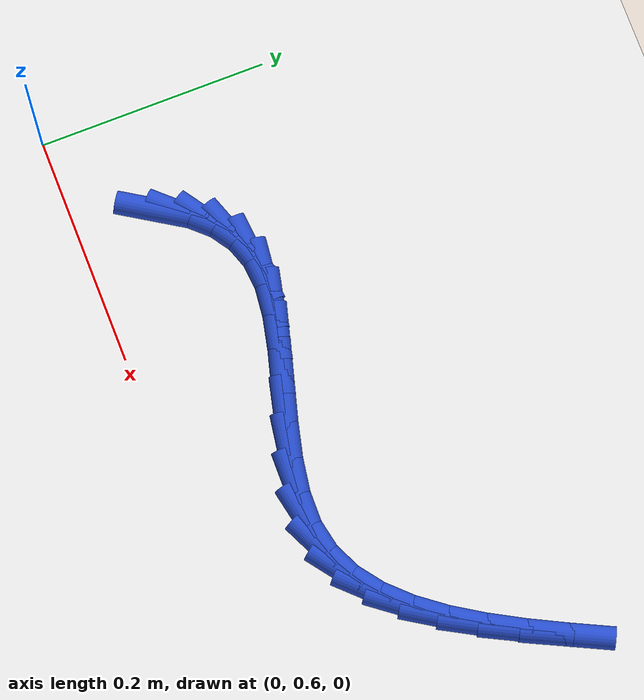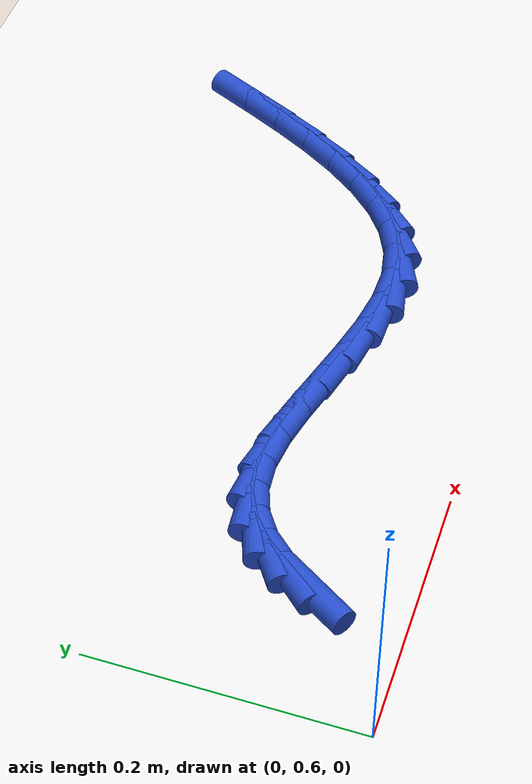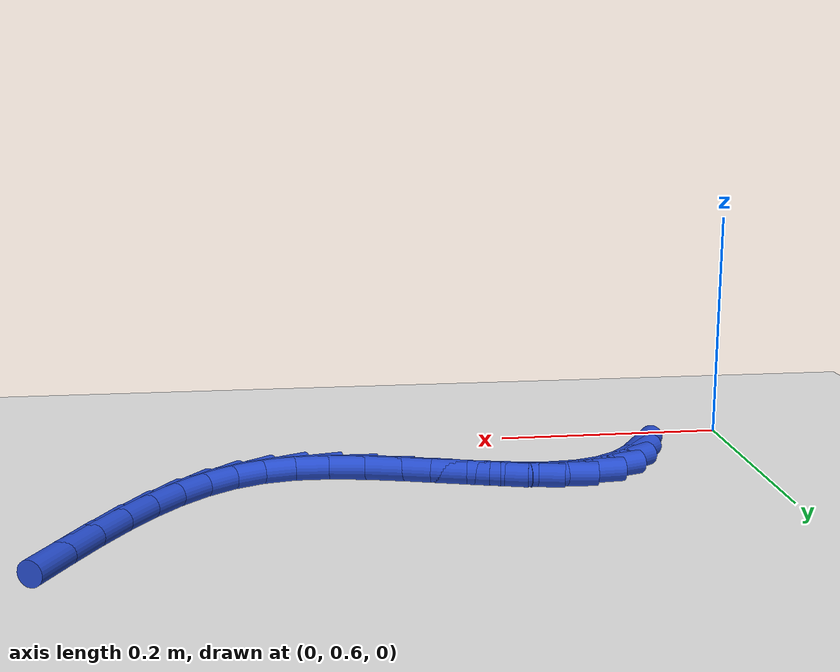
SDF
<sdf version="1.6">
 <world name="default">
  <model name="ground_plane">
   <static>1</static>
   <link name="link">
    <collision name="collision">
     <geometry><plane><normal>0 0 1</normal><size>100 100</size></plane></geometry>
     <surface><friction><ode><mu>100</mu><mu2>50</mu2></ode></friction></surface>
    </collision>
    <visual name="visual">
     <cast_shadows>0</cast_shadows>
     <geometry><plane><normal>0 0 1</normal><size>100 100</size></plane></geometry>
     <material>
      <script><uri>file://media/materials/scripts/gazebo.material</uri><name>Gazebo/WhiteGlow</name></script>
     </material>
    </visual>
   </link>
  </model>
  <model name="line">
   <link name="link_21">
    <pose>0.09260509833753626 0.6738903278546018 0.01 0 1.57 1.0072835828882964</pose>
    <collision name="collision">
     <geometry><cylinder><radius>0.01</radius><length>0.08</length></cylinder></geometry>
    </collision>
    <visual name="visual">
     <material>
      <script><name>Gazebo/Blue</name><uri>file://media/materials/scripts/gazebo.material</uri></script>
     </material>
     <geometry><cylinder><radius>0.01</radius><length>0.08</length></cylinder></geometry>
    </visual>
   </link>
   <link name="link_22">
    <pose>0.10579840660856102 0.6947706445567218 0.01 0 1.57 0.8257167259240422</pose>
    <collision name="collision">
     <geometry><cylinder><radius>0.01</radius><length>0.08</length></cylinder></geometry>
    </collision>
    <visual name="visual">
     <material>
      <script><name>Gazebo/Blue</name><uri>file://media/materials/scripts/gazebo.material</uri></script>
     </material>
     <geometry><cylinder><radius>0.01</radius><length>0.08</length></cylinder></geometry>
    </visual>
   </link>
   <link name="link_23">
    <pose>0.12131634025160658 0.7115932075410786 0.01 0 1.57 0.5987059527208497</pose>
    <collision name="collision">
     <geometry><cylinder><radius>0.01</radius><length>0.08</length></cylinder></geometry>
    </collision>
    <visual name="visual">
     <material>
      <script><name>Gazebo/Blue</name><uri>file://media/materials/scripts/gazebo.material</uri></script>
     </material>
     <geometry><cylinder><radius>0.01</radius><length>0.08</length></cylinder></geometry>
    </visual>
   </link>
   <link name="link_24">
    <pose>0.13938545619869164 0.7239206589861725 0.01 0 1.57 0.34088142372437685</pose>
    <collision name="collision">
     <geometry><cylinder><radius>0.01</radius><length>0.08</length></cylinder></geometry>
    </collision>
    <visual name="visual">
     <material>
      <script><name>Gazebo/Blue</name><uri>file://media/materials/scripts/gazebo.material</uri></script>
     </material>
     <geometry><cylinder><radius>0.01</radius><length>0.08</length></cylinder></geometry>
    </visual>
   </link>
   <link name="link_25">
    <pose>0.1602323113818349 0.7313156410705037 0.01 0 1.57 0.08552155814563012</pose>
    <collision name="collision">
     <geometry><cylinder><radius>0.01</radius><length>0.08</length></cylinder></geometry>
    </collision>
    <visual name="visual">
     <material>
      <script><name>Gazebo/Blue</name><uri>file://media/materials/scripts/gazebo.material</uri></script>
     </material>
     <geometry><cylinder><radius>0.01</radius><length>0.08</length></cylinder></geometry>
    </visual>
   </link>
   <link name="link_26">
    <pose>0.1840744512960569 0.7333596436923977 0.01 0 1.57 -0.10899472382913782</pose>
    <collision name="collision">
     <geometry><cylinder><radius>0.01</radius><length>0.08</length></cylinder></geometry>
    </collision>
    <visual name="visual">
     <material>
      <script><name>Gazebo/Blue</name><uri>file://media/materials/scripts/gazebo.material</uri></script>
     </material>
     <geometry><cylinder><radius>0.01</radius><length>0.08</length></cylinder></geometry>
    </visual>
   </link>
   <link name="link_27">
    <pose>0.21074351606767266 0.7304412906478425 0.01 0 1.57 -0.21858061651169342</pose>
    <collision name="collision">
     <geometry><cylinder><radius>0.01</radius><length>0.08</length></cylinder></geometry>
    </collision>
    <visual name="visual">
     <material>
      <script><name>Gazebo/Blue</name><uri>file://media/materials/scripts/gazebo.material</uri></script>
     </material>
     <geometry><cylinder><radius>0.01</radius><length>0.08</length></cylinder></geometry>
    </visual>
   </link>
   <link name="link_28">
    <pose>0.23954822387258012 0.7240429143625616 0.01 0 1.57 -0.2686732767853013</pose>
    <collision name="collision">
     <geometry><cylinder><radius>0.01</radius><length>0.08</length></cylinder></geometry>
    </collision>
    <visual name="visual">
     <material>
      <script><name>Gazebo/Blue</name><uri>file://media/materials/scripts/gazebo.material</uri></script>
     </material>
     <geometry><cylinder><radius>0.01</radius><length>0.08</length></cylinder></geometry>
    </visual>
   </link>
   <link name="link_29">
    <pose>0.26976008262744194 0.7157246737555208 0.01 0 1.57 -0.2738670696774084</pose>
    <collision name="collision">
     <geometry><cylinder><radius>0.01</radius><length>0.08</length></cylinder></geometry>
    </collision>
    <visual name="visual">
     <material>
      <script><name>Gazebo/Blue</name><uri>file://media/materials/scripts/gazebo.material</uri></script>
     </material>
     <geometry><cylinder><radius>0.01</radius><length>0.08</length></cylinder></geometry>
    </visual>
   </link>
   <link name="link_30">
    <pose>0.3006506002489206 0.7070467277456862 0.01 0 1.57 -0.23786541721052984</pose>
    <collision name="collision">
     <geometry><cylinder><radius>0.01</radius><length>0.08</length></cylinder></geometry>
    </collision>
    <visual name="visual">
     <material>
      <script><name>Gazebo/Blue</name><uri>file://media/materials/scripts/gazebo.material</uri></script>
     </material>
     <geometry><cylinder><radius>0.01</radius><length>0.08</length></cylinder></geometry>
    </visual>
   </link>
   <link name="link_31">
    <pose>0.33149128465367916 0.6995692352520233 0.01 0 1.57 -0.15563430187163324</pose>
    <collision name="collision">
     <geometry><cylinder><radius>0.01</radius><length>0.08</length></cylinder></geometry>
    </collision>
    <visual name="visual">
     <material>
      <script><name>Gazebo/Blue</name><uri>file://media/materials/scripts/gazebo.material</uri></script>
     </material>
     <geometry><cylinder><radius>0.01</radius><length>0.08</length></cylinder></geometry>
    </visual>
   </link>
   <link name="link_32">
    <pose>0.36155364375838006 0.6948523551934981 0.01 0 1.57 -0.013870628158267779</pose>
    <collision name="collision">
     <geometry><cylinder><radius>0.01</radius><length>0.08</length></cylinder></geometry>
    </collision>
    <visual name="visual">
     <material>
      <script><name>Gazebo/Blue</name><uri>file://media/materials/scripts/gazebo.material</uri></script>
     </material>
     <geometry><cylinder><radius>0.01</radius><length>0.08</length></cylinder></geometry>
    </visual>
   </link>
   <link name="link_33">
    <pose>0.3901091854796858 0.6944562464890758 0.01 0 1.57 0.20102334938266286</pose>
    <collision name="collision">
     <geometry><cylinder><radius>0.01</radius><length>0.08</length></cylinder></geometry>
    </collision>
    <visual name="visual">
     <material>
      <script><name>Gazebo/Blue</name><uri>file://media/materials/scripts/gazebo.material</uri></script>
     </material>
     <geometry><cylinder><radius>0.01</radius><length>0.08</length></cylinder></geometry>
    </visual>
   </link>
   <link name="link_34">
    <pose>0.41647738447328136 0.6998294435664786 0.01 0 1.57 0.4379355023624844</pose>
    <collision name="collision">
     <geometry><cylinder><radius>0.01</radius><length>0.08</length></cylinder></geometry>
    </collision>
    <visual name="visual">
     <material>
      <script><name>Gazebo/Blue</name><uri>file://media/materials/scripts/gazebo.material</uri></script>
     </material>
     <geometry><cylinder><radius>0.01</radius><length>0.08</length></cylinder></geometry>
    </visual>
   </link>
   <link name="link_35">
    <pose>0.4405453479932527 0.7110995301008451 0.01 0 1.57 0.6409313779787396</pose>
    <collision name="collision">
     <geometry><cylinder><radius>0.01</radius><length>0.08</length></cylinder></geometry>
    </collision>
    <visual name="visual">
     <material>
      <script><name>Gazebo/Blue</name><uri>file://media/materials/scripts/gazebo.material</uri></script>
     </material>
     <geometry><cylinder><radius>0.01</radius><length>0.08</length></cylinder></geometry>
    </visual>
   </link>
   <link name="link_36">
    <pose>0.4625712122363233 0.7275306598614439 0.01 0 1.57 0.7998318997861417</pose>
    <collision name="collision">
     <geometry><cylinder><radius>0.01</radius><length>0.08</length></cylinder></geometry>
    </collision>
    <visual name="visual">
     <material>
      <script><name>Gazebo/Blue</name><uri>file://media/materials/scripts/gazebo.material</uri></script>
     </material>
     <geometry><cylinder><radius>0.01</radius><length>0.08</length></cylinder></geometry>
    </visual>
   </link>
   <link name="link_37">
    <pose>0.4828195171551275 0.7483720842912598 0.01 0 1.57 0.9179690309820943</pose>
    <collision name="collision">
     <geometry><cylinder><radius>0.01</radius><length>0.08</length></cylinder></geometry>
    </collision>
    <visual name="visual">
     <material>
      <script><name>Gazebo/Blue</name><uri>file://media/materials/scripts/gazebo.material</uri></script>
     </material>
     <geometry><cylinder><radius>0.01</radius><length>0.08</length></cylinder></geometry>
    </visual>
   </link>
   <link name="link_38">
    <pose>0.5015548027023005 0.772873054833278 0.01 0 1.57 1.0029194961640735</pose>
    <collision name="collision">
     <geometry><cylinder><radius>0.01</radius><length>0.08</length></cylinder></geometry>
    </collision>
    <visual name="visual">
     <material>
      <script><name>Gazebo/Blue</name><uri>file://media/materials/scripts/gazebo.material</uri></script>
     </material>
     <geometry><cylinder><radius>0.01</radius><length>0.08</length></cylinder></geometry>
    </visual>
   </link>
   <link name="link_39">
    <pose>0.5190416088304769 0.8002828229304835 0.01 0 1.57 1.061728043392184</pose>
    <collision name="collision">
     <geometry><cylinder><radius>0.01</radius><length>0.08</length></cylinder></geometry>
    </collision>
    <visual name="visual">
     <material>
      <script><name>Gazebo/Blue</name><uri>file://media/materials/scripts/gazebo.material</uri></script>
     </material>
     <geometry><cylinder><radius>0.01</radius><length>0.08</length></cylinder></geometry>
    </visual>
   </link>
   <link name="link_40">
    <pose>0.5355444754922911 0.8298506400258613 0.01 0 1.57 1.0995354778672064</pose>
    <collision name="collision">
     <geometry><cylinder><radius>0.01</radius><length>0.08</length></cylinder></geometry>
    </collision>
    <visual name="visual">
     <material>
      <script><name>Gazebo/Blue</name><uri>file://media/materials/scripts/gazebo.material</uri></script>
     </material>
     <geometry><cylinder><radius>0.01</radius><length>0.08</length></cylinder></geometry>
    </visual>
   </link>
   <link name="link_41">
    <pose>0.551327942640378 0.8608257575623959 0.01 0 1.57 1.1195469896317325</pose>
    <collision name="collision">
     <geometry><cylinder><radius>0.01</radius><length>0.08</length></cylinder></geometry>
    </collision>
    <visual name="visual">
     <material>
      <script><name>Gazebo/Blue</name><uri>file://media/materials/scripts/gazebo.material</uri></script>
     </material>
     <geometry><cylinder><radius>0.01</radius><length>0.08</length></cylinder></geometry>
    </visual>
   </link>
  </model>
 </world>
</sdf>
